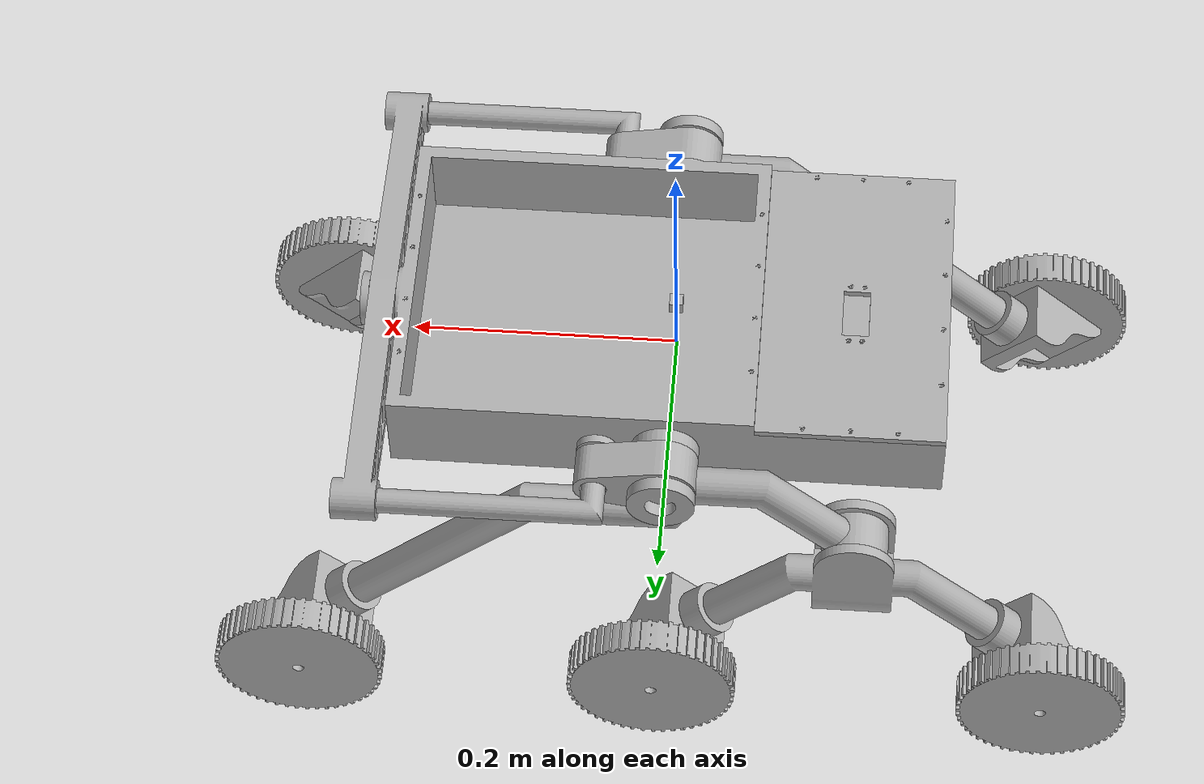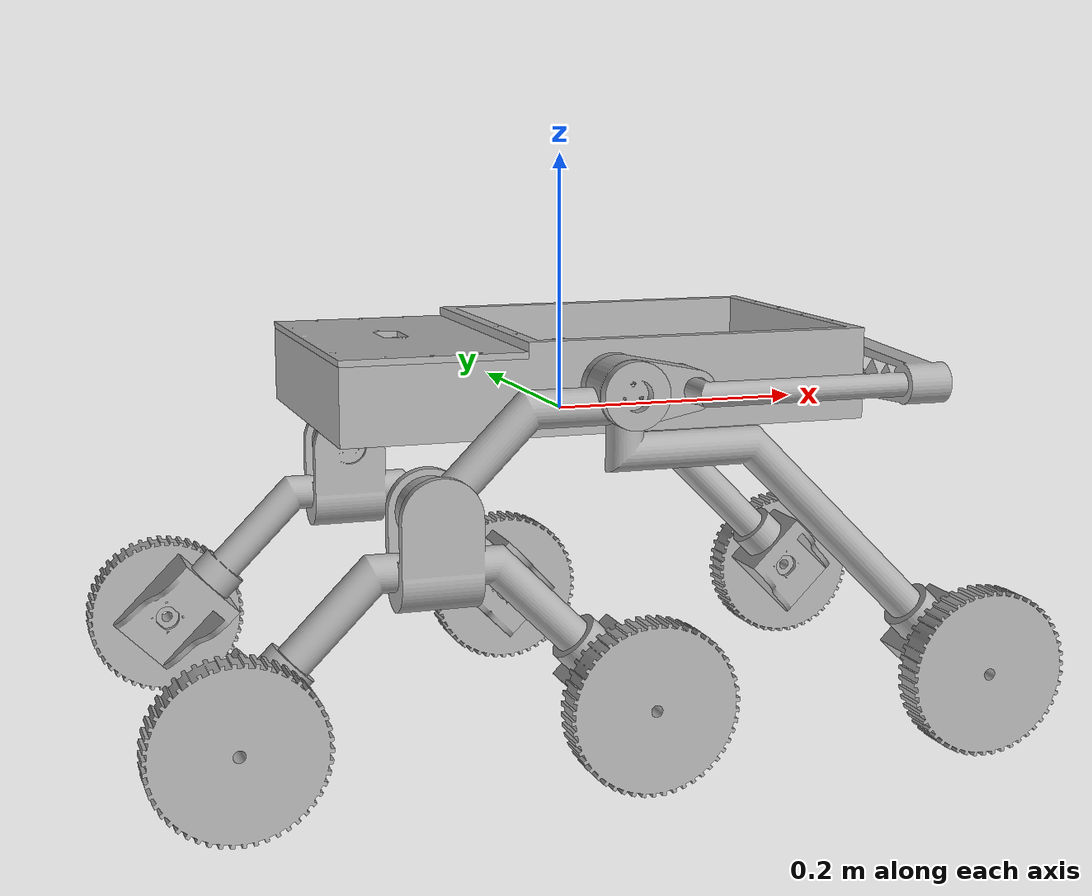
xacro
<?xml version="1.0" ?>
<robot name="rover2" xmlns:xacro="http://www.ros.org/wiki/xacro">

<xacro:include filename="$(find rover2_description)/urdf/materials.xacro" />
<xacro:include filename="$(find rover2_description)/urdf/rover2.trans" />
<xacro:include filename="$(find rover2_description)/urdf/rover2.gazebo" />
<link name="base_link">
  <inertial>
    <origin xyz="0.0033058419741462835 -1.1104118105957878e-06 0.020890591853134008" rpy="0 0 0"/>
    <mass value="2.0201606337214386"/>
    <inertia ixx="0.015239" iyy="0.03346" izz="0.047084" ixy="-0.0" iyz="0.0" ixz="-0.000356"/>
  </inertial>
  <visual>
    <origin xyz="0 0 0" rpy="0 0 0"/>
    <geometry>
      <mesh filename="package://rover2_description/meshes/base_link.stl" scale="0.001 0.001 0.001"/>
    </geometry>
    <material name="silver"/>
  </visual>
  <collision>
    <origin xyz="0 0 0" rpy="0 0 0"/>
    <geometry>
      <mesh filename="package://rover2_description/meshes/base_link.stl" scale="0.001 0.001 0.001"/>
    </geometry>
  </collision>
</link>

<link name="imu">
  <visual>
    <geometry>
      <box size="0.01 0.01 0.01" />
    </geometry>
    <material name="LightGrey">
      <color rgba="0.7 0.7 0.7 1.0"/>
    </material>
  </visual>
  <collision>
    <geometry>
      <box size="0.01 0.01 0.01" />
    </geometry>
  </collision>
  <inertial>
    <mass value="0.0"/>
    <origin xyz="0.0 0.0 0.0" rpy="0.0 0.0 0.0"/>
    <inertia ixx="0.00167" ixy="0.0" ixz="0.0" iyy="0.00167" iyz="0.0" izz="0.00167"/>
  </inertial>
</link>

<joint name="imu_joint" type="fixed">
  <parent link="base_link"/>
  <child link="imu"/>
  <origin xyz="0.0 0.0 0.05" rpy="0.0 0.0 0.0"/>
</joint>

<link name="rear_balance_1">
  <inertial>
    <origin xyz="-0.023346266850509334 8.303924814505164e-17 -5.55734555734988e-07" rpy="0 0 0"/>
    <mass value="0.3482923095095797"/>
    <inertia ixx="0.006511" iyy="0.001222" izz="0.007653" ixy="-0.0" iyz="-0.0" ixz="0.0"/>
  </inertial>
  <visual>
    <origin xyz="-0.21 -0.0 -0.035" rpy="0 0 0"/>
    <geometry>
      <mesh filename="package://rover2_description/meshes/rear_balance_1.stl" scale="0.001 0.001 0.001"/>
    </geometry>
    <material name="silver"/>
  </visual>
  <collision>
    <origin xyz="-0.21 -0.0 -0.035" rpy="0 0 0"/>
    <geometry>
      <mesh filename="package://rover2_description/meshes/rear_balance_1.stl" scale="0.001 0.001 0.001"/>
    </geometry>
  </collision>
</link>

<link name="rear_balance_fixture_1">
  <inertial>
    <origin xyz="0.006374000870768559 1.9481007987085033e-07 -1.575658547109393e-07" rpy="0 0 0"/>
    <mass value="0.009915523104337683"/>
    <inertia ixx="2e-06" iyy="1e-06" izz="1e-06" ixy="0.0" iyz="0.0" ixz="-0.0"/>
  </inertial>
  <visual>
    <origin xyz="-0.225 -0.0 -0.035" rpy="0 0 0"/>
    <geometry>
      <mesh filename="package://rover2_description/meshes/rear_balance_fixture_1.stl" scale="0.001 0.001 0.001"/>
    </geometry>
    <material name="silver"/>
  </visual>
  <collision>
    <origin xyz="-0.225 -0.0 -0.035" rpy="0 0 0"/>
    <geometry>
      <mesh filename="package://rover2_description/meshes/rear_balance_fixture_1.stl" scale="0.001 0.001 0.001"/>
    </geometry>
  </collision>
</link>

<link name="left_joint_fixture_1">
  <inertial>
    <origin xyz="2.0386448213946276e-09 -0.012443575814163638 -7.68617158114493e-09" rpy="0 0 0"/>
    <mass value="0.02801225772153081"/>
    <inertia ixx="5e-06" iyy="8e-06" izz="5e-06" ixy="-0.0" iyz="-0.0" ixz="0.0"/>
  </inertial>
  <visual>
    <origin xyz="-0.0 0.15 -0.035" rpy="0 0 0"/>
    <geometry>
      <mesh filename="package://rover2_description/meshes/left_joint_fixture_1.stl" scale="0.001 0.001 0.001"/>
    </geometry>
    <material name="silver"/>
  </visual>
  <collision>
    <origin xyz="-0.0 0.15 -0.035" rpy="0 0 0"/>
    <geometry>
      <mesh filename="package://rover2_description/meshes/left_joint_fixture_1.stl" scale="0.001 0.001 0.001"/>
    </geometry>
  </collision>
</link>

<link name="left_joint_1">
  <inertial>
    <origin xyz="0.04769865995642366 -0.014999998761228345 -0.06618794722512532" rpy="0 0 0"/>
    <mass value="0.41493003243822335"/>
    <inertia ixx="0.001385" iyy="0.007279" izz="0.005942" ixy="0.0" iyz="-0.0" ixz="0.0019"/>
  </inertial>
  <visual>
    <origin xyz="-0.0 0.13 -0.035" rpy="0 0 0"/>
    <geometry>
      <mesh filename="package://rover2_description/meshes/left_joint_1.stl" scale="0.001 0.001 0.001"/>
    </geometry>
    <material name="silver"/>
  </visual>
  <collision>
    <origin xyz="-0.0 0.13 -0.035" rpy="0 0 0"/>
    <geometry>
      <mesh filename="package://rover2_description/meshes/left_joint_1.stl" scale="0.001 0.001 0.001"/>
    </geometry>
  </collision>
</link>

<link name="left_connection_fixture_1">
  <inertial>
    <origin xyz="-8.145875063647612e-06 0.00800644435885442 -2.577154017344152e-06" rpy="0 0 0"/>
    <mass value="0.005269693768671983"/>
    <inertia ixx="0.0" iyy="1e-06" izz="0.0" ixy="0.0" iyz="0.0" ixz="-0.0"/>
  </inertial>
  <visual>
    <origin xyz="-0.05 0.135 -0.035" rpy="0 0 0"/>
    <geometry>
      <mesh filename="package://rover2_description/meshes/left_connection_fixture_1.stl" scale="0.001 0.001 0.001"/>
    </geometry>
    <material name="silver"/>
  </visual>
  <collision>
    <origin xyz="-0.05 0.135 -0.035" rpy="0 0 0"/>
    <geometry>
      <mesh filename="package://rover2_description/meshes/left_connection_fixture_1.stl" scale="0.001 0.001 0.001"/>
    </geometry>
  </collision>
</link>

<link name="right_joint_fixture_1">
  <inertial>
    <origin xyz="1.8599632836664969e-09 0.01244357527333928 -7.754600100939868e-09" rpy="0 0 0"/>
    <mass value="0.028012258926618423"/>
    <inertia ixx="5e-06" iyy="8e-06" izz="5e-06" ixy="0.0" iyz="0.0" ixz="-0.0"/>
  </inertial>
  <visual>
    <origin xyz="-0.0 -0.15 -0.035" rpy="0 0 0"/>
    <geometry>
      <mesh filename="package://rover2_description/meshes/right_joint_fixture_1.stl" scale="0.001 0.001 0.001"/>
    </geometry>
    <material name="silver"/>
  </visual>
  <collision>
    <origin xyz="-0.0 -0.15 -0.035" rpy="0 0 0"/>
    <geometry>
      <mesh filename="package://rover2_description/meshes/right_joint_fixture_1.stl" scale="0.001 0.001 0.001"/>
    </geometry>
  </collision>
</link>

<link name="right_connection_fixture_1">
  <inertial>
    <origin xyz="-8.148643091128449e-06 -0.008006443114608686 -2.594578196291053e-06" rpy="0 0 0"/>
    <mass value="0.00526969728051479"/>
    <inertia ixx="0.0" iyy="1e-06" izz="0.0" ixy="-0.0" iyz="-0.0" ixz="-0.0"/>
  </inertial>
  <visual>
    <origin xyz="-0.05 -0.135 -0.035" rpy="0 0 0"/>
    <geometry>
      <mesh filename="package://rover2_description/meshes/right_connection_fixture_1.stl" scale="0.001 0.001 0.001"/>
    </geometry>
    <material name="silver"/>
  </visual>
  <collision>
    <origin xyz="-0.05 -0.135 -0.035" rpy="0 0 0"/>
    <geometry>
      <mesh filename="package://rover2_description/meshes/right_connection_fixture_1.stl" scale="0.001 0.001 0.001"/>
    </geometry>
  </collision>
</link>

<link name="left_bogie_1">
  <inertial>
    <origin xyz="0.00029575456695818403 -0.015697658884970628 -0.056224071849449705" rpy="0 0 0"/>
    <mass value="0.33354043221783497"/>
    <inertia ixx="0.000416" iyy="0.001717" izz="0.001396" ixy="-0.0" iyz="4e-06" ixz="5e-06"/>
  </inertial>
  <visual>
    <origin xyz="0.143637 0.131 0.045679" rpy="0 0 0"/>
    <geometry>
      <mesh filename="package://rover2_description/meshes/left_bogie_1.stl" scale="0.001 0.001 0.001"/>
    </geometry>
    <material name="silver"/>
  </visual>
  <collision>
    <origin xyz="0.143637 0.131 0.045679" rpy="0 0 0"/>
    <geometry>
      <mesh filename="package://rover2_description/meshes/left_bogie_1.stl" scale="0.001 0.001 0.001"/>
    </geometry>
  </collision>
</link>

<link name="right_joint_1">
  <inertial>
    <origin xyz="0.04769865995637259 0.005000001238765317 -0.06618794722509572" rpy="0 0 0"/>
    <mass value="0.4149300324385008"/>
    <inertia ixx="0.001385" iyy="0.007279" izz="0.005942" ixy="0.0" iyz="-0.0" ixz="0.0019"/>
  </inertial>
  <visual>
    <origin xyz="-0.0 -0.14 -0.035" rpy="0 0 0"/>
    <geometry>
      <mesh filename="package://rover2_description/meshes/right_joint_1.stl" scale="0.001 0.001 0.001"/>
    </geometry>
    <material name="silver"/>
  </visual>
  <collision>
    <origin xyz="-0.0 -0.14 -0.035" rpy="0 0 0"/>
    <geometry>
      <mesh filename="package://rover2_description/meshes/right_joint_1.stl" scale="0.001 0.001 0.001"/>
    </geometry>
  </collision>
</link>

<link name="right_bogie_1">
  <inertial>
    <origin xyz="-4.301052213273593e-07 0.01569714149017043 -0.05635986054139265" rpy="0 0 0"/>
    <mass value="0.3344123351426813"/>
    <inertia ixx="0.000419" iyy="0.001731" izz="0.001408" ixy="-0.0" iyz="-4e-06" ixz="0.0"/>
  </inertial>
  <visual>
    <origin xyz="0.143637 -0.131 0.045679" rpy="0 0 0"/>
    <geometry>
      <mesh filename="package://rover2_description/meshes/right_bogie_1.stl" scale="0.001 0.001 0.001"/>
    </geometry>
    <material name="silver"/>
  </visual>
  <collision>
    <origin xyz="0.143637 -0.131 0.045679" rpy="0 0 0"/>
    <geometry>
      <mesh filename="package://rover2_description/meshes/right_bogie_1.stl" scale="0.001 0.001 0.001"/>
    </geometry>
  </collision>
</link>

<link name="left_bracket1_1">
  <inertial>
    <origin xyz="-0.016812870020609605 -0.007117296204149859 -0.01681334544787602" rpy="0 0 0"/>
    <mass value="0.0721929216254082"/>
    <inertia ixx="5.1e-05" iyy="6.8e-05" izz="5.1e-05" ixy="-9e-06" iyz="-9e-06" ixz="-3e-06"/>
  </inertial>
  <visual>
    <origin xyz="0.261315 0.1465 0.158356" rpy="0 0 0"/>
    <geometry>
      <mesh filename="package://rover2_description/meshes/left_bracket1_1.stl" scale="0.001 0.001 0.001"/>
    </geometry>
    <material name="silver"/>
  </visual>
  <collision>
    <origin xyz="0.261315 0.1465 0.158356" rpy="0 0 0"/>
    <geometry>
      <mesh filename="package://rover2_description/meshes/left_bracket1_1.stl" scale="0.001 0.001 0.001"/>
    </geometry>
  </collision>
</link>

<link name="left_bracket2_1">
  <inertial>
    <origin xyz="0.01681301059044025 -0.007117296204149859 -0.01681334544787602" rpy="0 0 0"/>
    <mass value="0.07219292162540823"/>
    <inertia ixx="5.1e-05" iyy="6.8e-05" izz="5.1e-05" ixy="9e-06" iyz="-9e-06" ixz="3e-06"/>
  </inertial>
  <visual>
    <origin xyz="0.02596 0.1465 0.158356" rpy="0 0 0"/>
    <geometry>
      <mesh filename="package://rover2_description/meshes/left_bracket2_1.stl" scale="0.001 0.001 0.001"/>
    </geometry>
    <material name="silver"/>
  </visual>
  <collision>
    <origin xyz="0.02596 0.1465 0.158356" rpy="0 0 0"/>
    <geometry>
      <mesh filename="package://rover2_description/meshes/left_bracket2_1.stl" scale="0.001 0.001 0.001"/>
    </geometry>
  </collision>
</link>

<link name="left_bracket3_1">
  <inertial>
    <origin xyz="0.016812854196446902 -0.007117296204149831 -0.016812953370236777" rpy="0 0 0"/>
    <mass value="0.0721929216254082"/>
    <inertia ixx="5.1e-05" iyy="6.8e-05" izz="5.1e-05" ixy="9e-06" iyz="-9e-06" ixz="3e-06"/>
  </inertial>
  <visual>
    <origin xyz="-0.248541 0.145 0.158461" rpy="0 0 0"/>
    <geometry>
      <mesh filename="package://rover2_description/meshes/left_bracket3_1.stl" scale="0.001 0.001 0.001"/>
    </geometry>
    <material name="silver"/>
  </visual>
  <collision>
    <origin xyz="-0.248541 0.145 0.158461" rpy="0 0 0"/>
    <geometry>
      <mesh filename="package://rover2_description/meshes/left_bracket3_1.stl" scale="0.001 0.001 0.001"/>
    </geometry>
  </collision>
</link>

<link name="left_bracket1__1__1">
  <inertial>
    <origin xyz="-0.016812896448468173 0.007117350540184225 -0.016813470875556152" rpy="0 0 0"/>
    <mass value="0.07219328832346768"/>
    <inertia ixx="5.1e-05" iyy="6.8e-05" izz="5.1e-05" ixy="9e-06" iyz="9e-06" ixz="-3e-06"/>
  </inertial>
  <visual>
    <origin xyz="0.261315 -0.1465 0.158356" rpy="0 0 0"/>
    <geometry>
      <mesh filename="package://rover2_description/meshes/left_bracket1__1__1.stl" scale="0.001 0.001 0.001"/>
    </geometry>
    <material name="silver"/>
  </visual>
  <collision>
    <origin xyz="0.261315 -0.1465 0.158356" rpy="0 0 0"/>
    <geometry>
      <mesh filename="package://rover2_description/meshes/left_bracket1__1__1.stl" scale="0.001 0.001 0.001"/>
    </geometry>
  </collision>
</link>

<link name="left_bracket2__1__1">
  <inertial>
    <origin xyz="0.01681303701829994 0.007117350540184059 -0.016813470875556014" rpy="0 0 0"/>
    <mass value="0.0721932883234677"/>
    <inertia ixx="5.1e-05" iyy="6.8e-05" izz="5.1e-05" ixy="-9e-06" iyz="9e-06" ixz="3e-06"/>
  </inertial>
  <visual>
    <origin xyz="0.02596 -0.1465 0.158356" rpy="0 0 0"/>
    <geometry>
      <mesh filename="package://rover2_description/meshes/left_bracket2__1__1.stl" scale="0.001 0.001 0.001"/>
    </geometry>
    <material name="silver"/>
  </visual>
  <collision>
    <origin xyz="0.02596 -0.1465 0.158356" rpy="0 0 0"/>
    <geometry>
      <mesh filename="package://rover2_description/meshes/left_bracket2__1__1.stl" scale="0.001 0.001 0.001"/>
    </geometry>
  </collision>
</link>

<link name="left_bracket3__1__1">
  <inertial>
    <origin xyz="0.016812880624305526 0.007117350540184281 -0.016813078797916825" rpy="0 0 0"/>
    <mass value="0.07219328832346761"/>
    <inertia ixx="5.1e-05" iyy="6.8e-05" izz="5.1e-05" ixy="-9e-06" iyz="9e-06" ixz="3e-06"/>
  </inertial>
  <visual>
    <origin xyz="-0.248541 -0.145 0.158461" rpy="0 0 0"/>
    <geometry>
      <mesh filename="package://rover2_description/meshes/left_bracket3__1__1.stl" scale="0.001 0.001 0.001"/>
    </geometry>
    <material name="silver"/>
  </visual>
  <collision>
    <origin xyz="-0.248541 -0.145 0.158461" rpy="0 0 0"/>
    <geometry>
      <mesh filename="package://rover2_description/meshes/left_bracket3__1__1.stl" scale="0.001 0.001 0.001"/>
    </geometry>
  </collision>
</link>

<link name="wheel_1">
  <inertial>
    <origin xyz="1.9025628261726268e-07 -0.012500000000000011 -2.1049541862327992e-07" rpy="0 0 0"/>
    <mass value="0.33060476754031437"/>
    <inertia ixx="0.000349" iyy="0.000665" izz="0.000349" ixy="0.0" iyz="0.0" ixz="0.0"/>
  </inertial>
  <visual>
    <origin xyz="0.294372 0.1715 0.191413" rpy="0 0 0"/>
    <geometry>
      <mesh filename="package://rover2_description/meshes/wheel_1.stl" scale="0.001 0.001 0.001"/>
    </geometry>
    <material name="silver"/>
  </visual>
  <collision>
    <origin xyz="0.294372 0.1715 0.191413" rpy="0 0 0"/>
    <geometry>
      <mesh filename="package://rover2_description/meshes/wheel_1.stl" scale="0.001 0.001 0.001"/>
    </geometry>
  </collision>
</link>

<link name="wheel__1__1">
  <inertial>
    <origin xyz="-4.968645197101634e-08 -0.012500000000000011 -2.104954185400132e-07" rpy="0 0 0"/>
    <mass value="0.33060476754031387"/>
    <inertia ixx="0.000349" iyy="0.000665" izz="0.000349" ixy="-0.0" iyz="0.0" ixz="0.0"/>
  </inertial>
  <visual>
    <origin xyz="-0.007097 0.1715 0.191413" rpy="0 0 0"/>
    <geometry>
      <mesh filename="package://rover2_description/meshes/wheel__1__1.stl" scale="0.001 0.001 0.001"/>
    </geometry>
    <material name="silver"/>
  </visual>
  <collision>
    <origin xyz="-0.007097 0.1715 0.191413" rpy="0 0 0"/>
    <geometry>
      <mesh filename="package://rover2_description/meshes/wheel__1__1.stl" scale="0.001 0.001 0.001"/>
    </geometry>
  </collision>
</link>

<link name="wheel__2__1">
  <inertial>
    <origin xyz="-2.060804453196674e-07 -0.012500000000000011 1.81582220676324e-07" rpy="0 0 0"/>
    <mass value="0.33060476754031387"/>
    <inertia ixx="0.000349" iyy="0.000665" izz="0.000349" ixy="0.0" iyz="0.0" ixz="-0.0"/>
  </inertial>
  <visual>
    <origin xyz="-0.281598 0.17 0.191518" rpy="0 0 0"/>
    <geometry>
      <mesh filename="package://rover2_description/meshes/wheel__2__1.stl" scale="0.001 0.001 0.001"/>
    </geometry>
    <material name="silver"/>
  </visual>
  <collision>
    <origin xyz="-0.281598 0.17 0.191518" rpy="0 0 0"/>
    <geometry>
      <mesh filename="package://rover2_description/meshes/wheel__2__1.stl" scale="0.001 0.001 0.001"/>
    </geometry>
  </collision>
</link>

<link name="wheel__3__1">
  <inertial>
    <origin xyz="1.9025628261726268e-07 0.012499999999999983 -2.104954186510355e-07" rpy="0 0 0"/>
    <mass value="0.33060476754031437"/>
    <inertia ixx="0.000349" iyy="0.000665" izz="0.000349" ixy="-0.0" iyz="-0.0" ixz="0.0"/>
  </inertial>
  <visual>
    <origin xyz="0.294372 -0.1715 0.191413" rpy="0 0 0"/>
    <geometry>
      <mesh filename="package://rover2_description/meshes/wheel__3__1.stl" scale="0.001 0.001 0.001"/>
    </geometry>
    <material name="silver"/>
  </visual>
  <collision>
    <origin xyz="0.294372 -0.1715 0.191413" rpy="0 0 0"/>
    <geometry>
      <mesh filename="package://rover2_description/meshes/wheel__3__1.stl" scale="0.001 0.001 0.001"/>
    </geometry>
  </collision>
</link>

<link name="wheel__1___1__1">
  <inertial>
    <origin xyz="-4.968645197535315e-08 0.012499999999999983 -2.104954185400132e-07" rpy="0 0 0"/>
    <mass value="0.33060476754031387"/>
    <inertia ixx="0.000349" iyy="0.000665" izz="0.000349" ixy="0.0" iyz="-0.0" ixz="0.0"/>
  </inertial>
  <visual>
    <origin xyz="-0.007097 -0.1715 0.191413" rpy="0 0 0"/>
    <geometry>
      <mesh filename="package://rover2_description/meshes/wheel__1___1__1.stl" scale="0.001 0.001 0.001"/>
    </geometry>
    <material name="silver"/>
  </visual>
  <collision>
    <origin xyz="-0.007097 -0.1715 0.191413" rpy="0 0 0"/>
    <geometry>
      <mesh filename="package://rover2_description/meshes/wheel__1___1__1.stl" scale="0.001 0.001 0.001"/>
    </geometry>
  </collision>
</link>

<link name="wheel__2___1__1">
  <inertial>
    <origin xyz="-2.060804453196674e-07 0.012500000000000011 1.81582220676324e-07" rpy="0 0 0"/>
    <mass value="0.33060476754031387"/>
    <inertia ixx="0.000349" iyy="0.000665" izz="0.000349" ixy="0.0" iyz="-0.0" ixz="-0.0"/>
  </inertial>
  <visual>
    <origin xyz="-0.281598 -0.17 0.191518" rpy="0 0 0"/>
    <geometry>
      <mesh filename="package://rover2_description/meshes/wheel__2___1__1.stl" scale="0.001 0.001 0.001"/>
    </geometry>
    <material name="silver"/>
  </visual>
  <collision>
    <origin xyz="-0.281598 -0.17 0.191518" rpy="0 0 0"/>
    <geometry>
      <mesh filename="package://rover2_description/meshes/wheel__2___1__1.stl" scale="0.001 0.001 0.001"/>
    </geometry>
  </collision>
</link>

<link name="front_cover_1">
  <inertial>
    <origin xyz="-0.06986688017462364 -0.12025216951550778 0.0025000004859796407" rpy="0 0 0"/>
    <mass value="0.17260934837170003"/>
    <inertia ixx="0.000846" iyy="0.000289" izz="0.001134" ixy="0.0" iyz="0.0" ixz="-0.0"/>
  </inertial>
  <visual>
    <origin xyz="0.065 -0.12 -0.058" rpy="0 0 0"/>
    <geometry>
      <mesh filename="package://rover2_description/meshes/front_cover_1.stl" scale="0.001 0.001 0.001"/>
    </geometry>
    <material name="silver"/>
  </visual>
  <collision>
    <origin xyz="0.065 -0.12 -0.058" rpy="0 0 0"/>
    <geometry>
      <mesh filename="package://rover2_description/meshes/front_cover_1.stl" scale="0.001 0.001 0.001"/>
    </geometry>
  </collision>
</link>

<joint name="Revolute_1" type="revolute">
  <origin xyz="0.21 0.0 0.035" rpy="0 0 0"/>
  <parent link="base_link"/>
  <child link="rear_balance_1"/>
  <axis xyz="1.0 0.0 0.0"/>
  <limit upper="0.174533" lower="-0.174533" effort="100" velocity="100"/>
</joint>

<joint name="Rigid_2" type="fixed">
  <origin xyz="0.225 0.0 0.035" rpy="0 0 0"/>
  <parent link="base_link"/>
  <child link="rear_balance_fixture_1"/>
</joint>

<joint name="Rigid_3" type="fixed">
  <origin xyz="0.0 -0.15 0.035" rpy="0 0 0"/>
  <parent link="base_link"/>
  <child link="left_joint_fixture_1"/>
</joint>

<joint name="Revolute_4" type="revolute">
  <origin xyz="0.0 -0.13 0.035" rpy="0 0 0"/>
  <parent link="base_link"/>
  <child link="left_joint_1"/>
  <axis xyz="0.0 -1.0 0.0"/>
  <limit upper="0.174533" lower="-0.174533" effort="100" velocity="100"/>
</joint>

<joint name="Rigid_5" type="fixed">
  <origin xyz="-0.16 -0.135 0.0" rpy="0 0 0"/>
  <parent link="rear_balance_1"/>
  <child link="left_connection_fixture_1"/>
</joint>

<joint name="Rigid_6" type="fixed">
  <origin xyz="0.0 0.15 0.035" rpy="0 0 0"/>
  <parent link="base_link"/>
  <child link="right_joint_fixture_1"/>
</joint>

<joint name="Rigid_7" type="fixed">
  <origin xyz="-0.16 0.135 0.0" rpy="0 0 0"/>
  <parent link="rear_balance_1"/>
  <child link="right_connection_fixture_1"/>
</joint>

<joint name="Revolute_8" type="revolute">
  <origin xyz="-0.143637 -0.001 -0.080679" rpy="0 0 0"/>
  <parent link="left_joint_1"/>
  <child link="left_bogie_1"/>
  <axis xyz="0.0 -1.0 0.0"/>
  <limit upper="0.349066" lower="-0.785398" effort="100" velocity="100"/>
</joint>

<joint name="Revolute_9" type="revolute">
  <origin xyz="0.0 0.14 0.035" rpy="0 0 0"/>
  <parent link="base_link"/>
  <child link="right_joint_1"/>
  <axis xyz="0.0 -1.0 0.0"/>
  <limit upper="0.174533" lower="-0.174533" effort="100" velocity="100"/>
</joint>

<joint name="Revolute_11" type="revolute">
  <origin xyz="-0.143637 -0.009 -0.080679" rpy="0 0 0"/>
  <parent link="right_joint_1"/>
  <child link="right_bogie_1"/>
  <axis xyz="0.0 -1.0 0.0"/>
  <limit upper="0.349066" lower="-0.785398" effort="100" velocity="100"/>
</joint>

<joint name="Rigid_12" type="fixed">
  <origin xyz="-0.117678 -0.0155 -0.112677" rpy="0 0 0"/>
  <parent link="left_bogie_1"/>
  <child link="left_bracket1_1"/>
</joint>

<joint name="Rigid_13" type="fixed">
  <origin xyz="0.117677 -0.0155 -0.112677" rpy="0 0 0"/>
  <parent link="left_bogie_1"/>
  <child link="left_bracket2_1"/>
</joint>

<joint name="Rigid_14" type="fixed">
  <origin xyz="0.248541 -0.015 -0.193461" rpy="0 0 0"/>
  <parent link="left_joint_1"/>
  <child link="left_bracket3_1"/>
</joint>

<joint name="Rigid_15" type="fixed">
  <origin xyz="-0.117678 0.0155 -0.112677" rpy="0 0 0"/>
  <parent link="right_bogie_1"/>
  <child link="left_bracket1__1__1"/>
</joint>

<joint name="Rigid_16" type="fixed">
  <origin xyz="0.117677 0.0155 -0.112677" rpy="0 0 0"/>
  <parent link="right_bogie_1"/>
  <child link="left_bracket2__1__1"/>
</joint>

<joint name="Rigid_17" type="fixed">
  <origin xyz="0.248541 0.005 -0.193461" rpy="0 0 0"/>
  <parent link="right_joint_1"/>
  <child link="left_bracket3__1__1"/>
</joint>

<joint name="wheel_1_joint" type="continuous">
  <origin xyz="-0.033057 -0.025 -0.033057" rpy="0 0 0"/>
  <parent link="left_bracket1_1"/>
  <child link="wheel_1"/>
  <axis xyz="0.0 -1.0 0.0"/>
</joint>

<joint name="wheel_2_joint" type="continuous">
  <origin xyz="0.033057 -0.025 -0.033057" rpy="0 0 0"/>
  <parent link="left_bracket2_1"/>
  <child link="wheel__1__1"/>
  <axis xyz="0.0 -1.0 0.0"/>
</joint>

<joint name="wheel_3_joint" type="continuous">
  <origin xyz="0.033057 -0.025 -0.033057" rpy="0 0 0"/>
  <parent link="left_bracket3_1"/>
  <child link="wheel__2__1"/>
  <axis xyz="0.0 -1.0 0.0"/>
</joint>

<joint name="wheel_4_joint" type="continuous">
  <origin xyz="-0.033057 0.025 -0.033057" rpy="0 0 0"/>
  <parent link="left_bracket1__1__1"/>
  <child link="wheel__3__1"/>
  <axis xyz="0.0 -1.0 0.0"/>
</joint>

<joint name="wheel_5_joint" type="continuous">
  <origin xyz="0.033057 0.025 -0.033057" rpy="0 0 0"/>
  <parent link="left_bracket2__1__1"/>
  <child link="wheel__1___1__1"/>
  <axis xyz="0.0 -1.0 0.0"/>
</joint>

<joint name="wheel_6_joint" type="continuous">
  <origin xyz="0.033057 0.025 -0.033057" rpy="0 0 0"/>
  <parent link="left_bracket3__1__1"/>
  <child link="wheel__2___1__1"/>
  <axis xyz="0.0 -1.0 0.0"/>
</joint>

<joint name="Rigid_24" type="fixed">
  <origin xyz="-0.065 0.12 0.058" rpy="0 0 0"/>
  <parent link="base_link"/>
  <child link="front_cover_1"/>
</joint>

</robot>

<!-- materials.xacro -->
<robot name="rover2" xmlns:xacro="http://www.ros.org/wiki/xacro" >

<material name="silver">
  <color rgba="0.700 0.700 0.700 1.000"/>
</material>

</robot>

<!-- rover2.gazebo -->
<robot name="rover2" xmlns:xacro="http://www.ros.org/wiki/xacro" >

<xacro:property name="body_color" value="Gazebo/Silver" />

<gazebo>
  <plugin name="ros_control" filename="libgazebo_ros_control.so"/>
</gazebo>

<gazebo reference="rear_balance_1">
  <material>${body_color}</material>
  <mu1>0.2</mu1>
  <mu2>0.2</mu2>
  <selfCollide>true</selfCollide>
</gazebo>

<gazebo reference="rear_balance_fixture_1">
  <material>${body_color}</material>
  <mu1>0.2</mu1>
  <mu2>0.2</mu2>
  <selfCollide>true</selfCollide>
</gazebo>

<gazebo reference="left_joint_fixture_1">
  <material>${body_color}</material>
  <mu1>0.2</mu1>
  <mu2>0.2</mu2>
  <selfCollide>true</selfCollide>
</gazebo>

<gazebo reference="left_joint_1">
  <material>${body_color}</material>
  <mu1>0.2</mu1>
  <mu2>0.2</mu2>
  <selfCollide>true</selfCollide>
</gazebo>

<gazebo reference="left_connection_fixture_1">
  <material>${body_color}</material>
  <mu1>0.2</mu1>
  <mu2>0.2</mu2>
  <selfCollide>true</selfCollide>
</gazebo>

<gazebo reference="right_joint_fixture_1">
  <material>${body_color}</material>
  <mu1>0.2</mu1>
  <mu2>0.2</mu2>
  <selfCollide>true</selfCollide>
</gazebo>

<gazebo reference="right_connection_fixture_1">
  <material>${body_color}</material>
  <mu1>0.2</mu1>
  <mu2>0.2</mu2>
  <selfCollide>true</selfCollide>
</gazebo>

<gazebo reference="left_bogie_1">
  <material>${body_color}</material>
  <mu1>0.2</mu1>
  <mu2>0.2</mu2>
  <selfCollide>true</selfCollide>
</gazebo>

<gazebo reference="right_joint_1">
  <material>${body_color}</material>
  <mu1>0.2</mu1>
  <mu2>0.2</mu2>
  <selfCollide>true</selfCollide>
</gazebo>

<gazebo reference="right_bogie_1">
  <material>${body_color}</material>
  <mu1>0.2</mu1>
  <mu2>0.2</mu2>
  <selfCollide>true</selfCollide>
</gazebo>

<gazebo reference="left_bracket1_1">
  <material>${body_color}</material>
  <mu1>0.2</mu1>
  <mu2>0.2</mu2>
  <selfCollide>true</selfCollide>
</gazebo>

<gazebo reference="left_bracket2_1">
  <material>${body_color}</material>
  <mu1>0.2</mu1>
  <mu2>0.2</mu2>
  <selfCollide>true</selfCollide>
</gazebo>

<gazebo reference="left_bracket3_1">
  <material>${body_color}</material>
  <mu1>0.2</mu1>
  <mu2>0.2</mu2>
  <selfCollide>true</selfCollide>
</gazebo>

<gazebo reference="left_bracket1__1__1">
  <material>${body_color}</material>
  <mu1>0.2</mu1>
  <mu2>0.2</mu2>
  <selfCollide>true</selfCollide>
</gazebo>

<gazebo reference="left_bracket2__1__1">
  <material>${body_color}</material>
  <mu1>0.2</mu1>
  <mu2>0.2</mu2>
  <selfCollide>true</selfCollide>
</gazebo>

<gazebo reference="left_bracket3__1__1">
  <material>${body_color}</material>
  <mu1>0.2</mu1>
  <mu2>0.2</mu2>
  <selfCollide>true</selfCollide>
</gazebo>

<gazebo reference="wheel_1">
  <material>${body_color}</material>
  <mu1>0.2</mu1>
  <mu2>0.2</mu2>
  <selfCollide>true</selfCollide>
</gazebo>

<gazebo reference="wheel__1__1">
  <material>${body_color}</material>
  <mu1>0.2</mu1>
  <mu2>0.2</mu2>
  <selfCollide>true</selfCollide>
</gazebo>

<gazebo reference="wheel__2__1">
  <material>${body_color}</material>
  <mu1>0.2</mu1>
  <mu2>0.2</mu2>
  <selfCollide>true</selfCollide>
</gazebo>

<gazebo reference="wheel__3__1">
  <material>${body_color}</material>
  <mu1>0.2</mu1>
  <mu2>0.2</mu2>
  <selfCollide>true</selfCollide>
</gazebo>

<gazebo reference="wheel__1___1__1">
  <material>${body_color}</material>
  <mu1>0.2</mu1>
  <mu2>0.2</mu2>
  <selfCollide>true</selfCollide>
</gazebo>

<gazebo reference="wheel__2___1__1">
  <material>${body_color}</material>
  <mu1>0.2</mu1>
  <mu2>0.2</mu2>
  <selfCollide>true</selfCollide>
</gazebo>

<gazebo reference="front_cover_1">
  <material>${body_color}</material>
  <mu1>0.2</mu1>
  <mu2>0.2</mu2>
  <selfCollide>true</selfCollide>
</gazebo>
<gazebo reference="base_link">
    <sensor type="imu" name="imu_sensor">
        <always_on>1</always_on>
        <update_rate>50</update_rate>
        <imu>
            <angular_velocity>
                <noise type="gaussian">
                    <mean>0.0</mean>
                    <stddev>0.01</stddev>
                </noise>
            </angular_velocity>
            <linear_acceleration>
                <noise type="gaussian">
                    <mean>0.0</mean>
                    <stddev>0.01</stddev>
                </noise>
            </linear_acceleration>
        </imu>
        <plugin name="imu_plugin" filename="libgazebo_ros_imu_sensor.so">
            <ros>
                <!-- Removed namespace to avoid "//" issue -->
                <remapping>imu/data:=imu_data</remapping>
            </ros>
            <alwaysOn>true</alwaysOn>  <!-- Ensures continuous publishing -->
            <updateRateHZ>50</updateRateHZ>
            <topicName>imu_data</topicName>
            <frameName>imu</frameName>
            <gaussianNoise>0.01</gaussianNoise>
            <xyzOffset>0 0 0</xyzOffset>
            <rpyOffset>0 0 0</rpyOffset>
        </plugin>
    </sensor>
</gazebo>

</robot>
